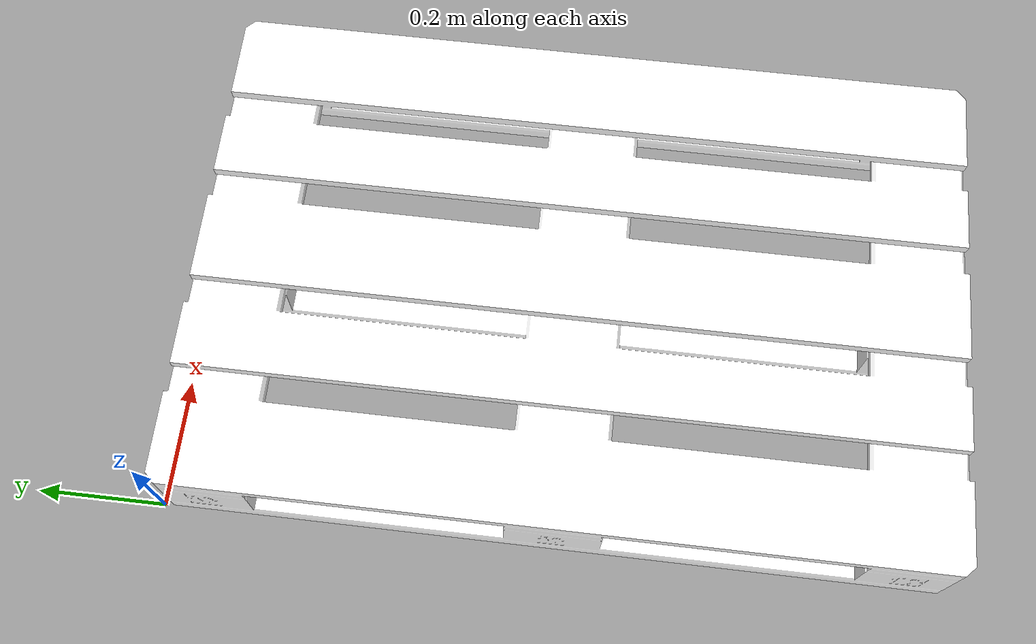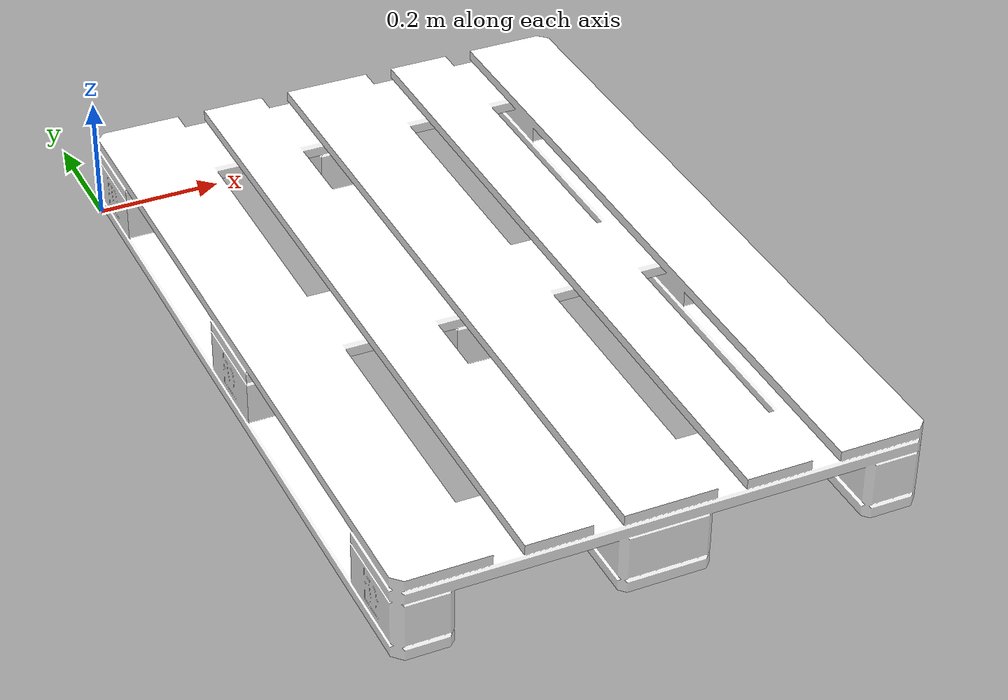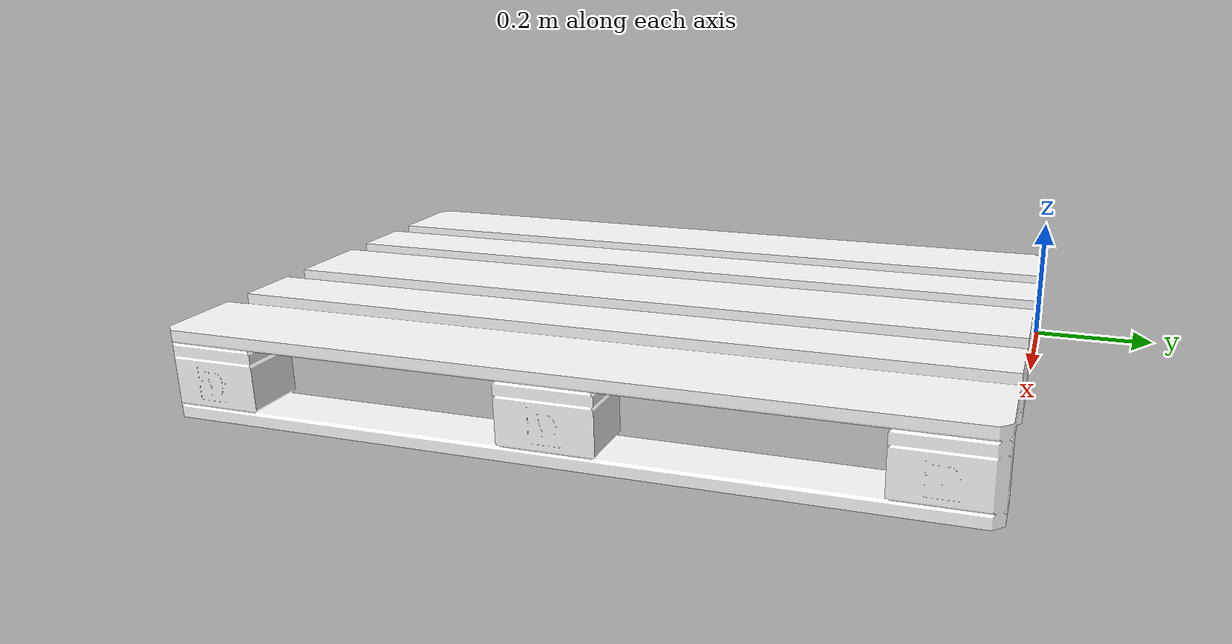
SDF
<?xml version='1.0'?>
<sdf version='1.7'>
  <model name='pallet_box_mobile'>
    <pose>0 0 0.01 0 0 0</pose>
    <self_collide>false</self_collide>
    <!-- BASE_LINK FRAME -->
    <link name='pallet_base'>
      <pose>0 0 0 0 0 0</pose>
      <inertial>
        <pose>0 0 0.4 0 0 0</pose>
        <mass>20</mass> <!-- original value: 200 -->
        <inertia>
          <ixx>5</ixx> <!-- original value: 0.1 -->
          <ixy>0</ixy>
          <ixz>0</ixz>
          <iyy>5</iyy> <!-- original value: 0.1 -->
          <iyz>0</iyz>
          <izz>5</izz> <!-- original value: 0.1 -->
        </inertia>
      </inertial>
      <collision name="pallet_top_collision">
        <pose>0 0 0.125 0 0 0</pose>
        <geometry>
          <box>
            <size>1.22 0.8 0.04</size>
          </box>
        </geometry>
        <surface>
          <friction>
            <ode>
              <mu>0.4</mu>
              <mu2>0.4</mu2>
            </ode>
          </friction>
        </surface>
      </collision>
      <collision name="pallet_center_collision">
        <pose>0 0 0.055 0 0 0</pose>
        <geometry>
          <box>
            <size>1.22 0.8 0.1</size>
          </box>
        </geometry>
      </collision>
      <visual name='pallet_visual'>
        <pose>0 0 0 0 0 0</pose>
        <geometry>
          <mesh>
            <scale>1 1 1</scale>
            <uri>meshes/pallet.dae</uri>
          </mesh>
        </geometry>
      </visual>
    </link>
    <static>0</static>
  </model>
</sdf>
